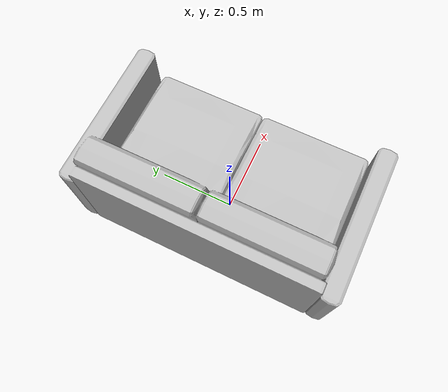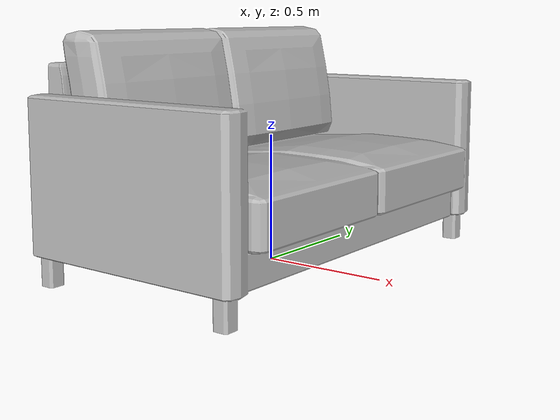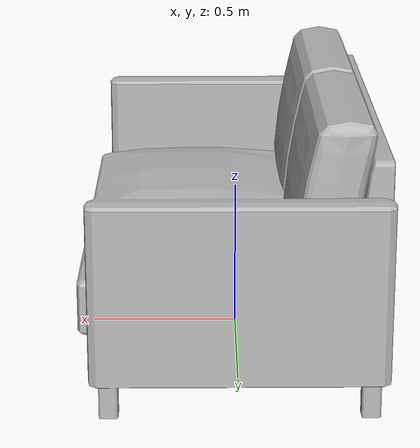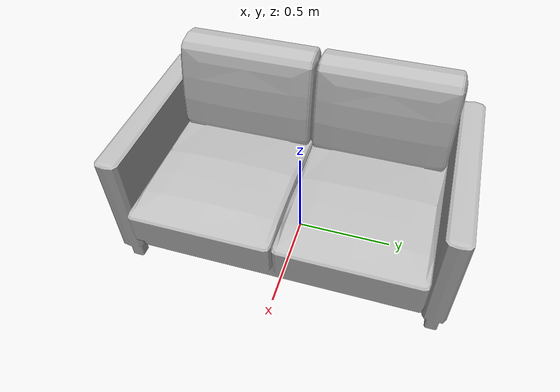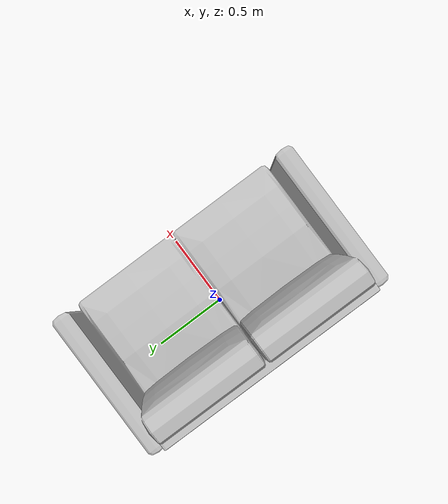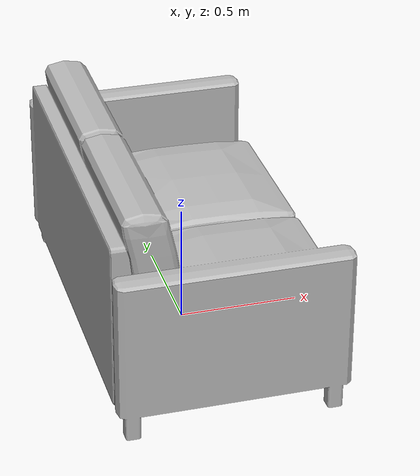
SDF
<?xml version='1.0'?>
<sdf version='1.4'>
  <model name='57'>
    <pose>0 0 0 0 0 0</pose>
    <static>true</static>
    <link name='link'>
      <collision name='collision'>
        <pose>0 0 0 0 0 0</pose>
        <geometry>
          <box>
            <size>0.969847 1.65014 2</size>
          </box>
        </geometry>
      </collision>
      <visual name='visual'>
        <pose>0 0 0 0 0 0</pose>
        <geometry>
          <mesh><uri>model://57/57.dae</uri></mesh>
        </geometry>
      </visual>
    </link>
  </model>
</sdf>
